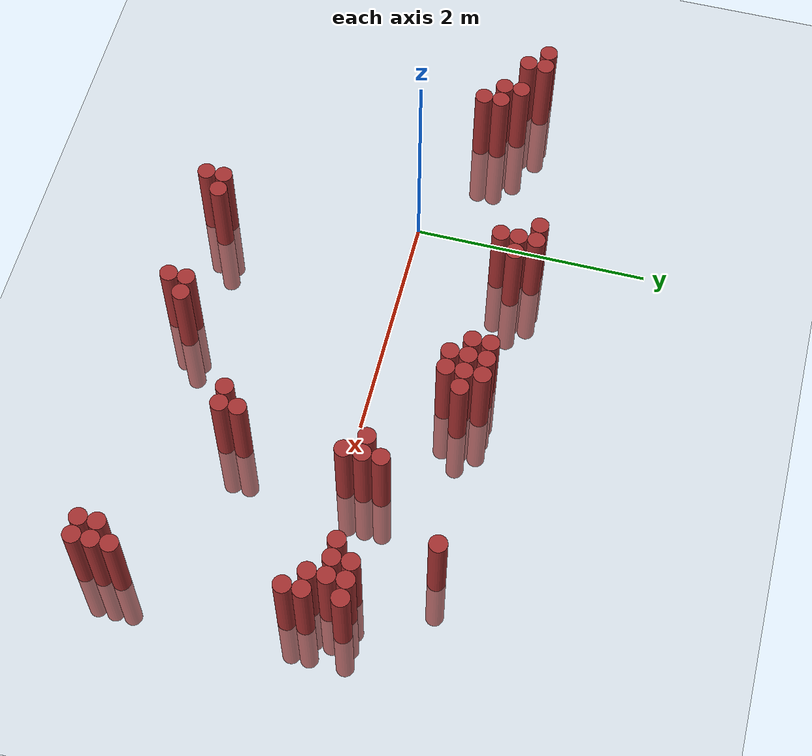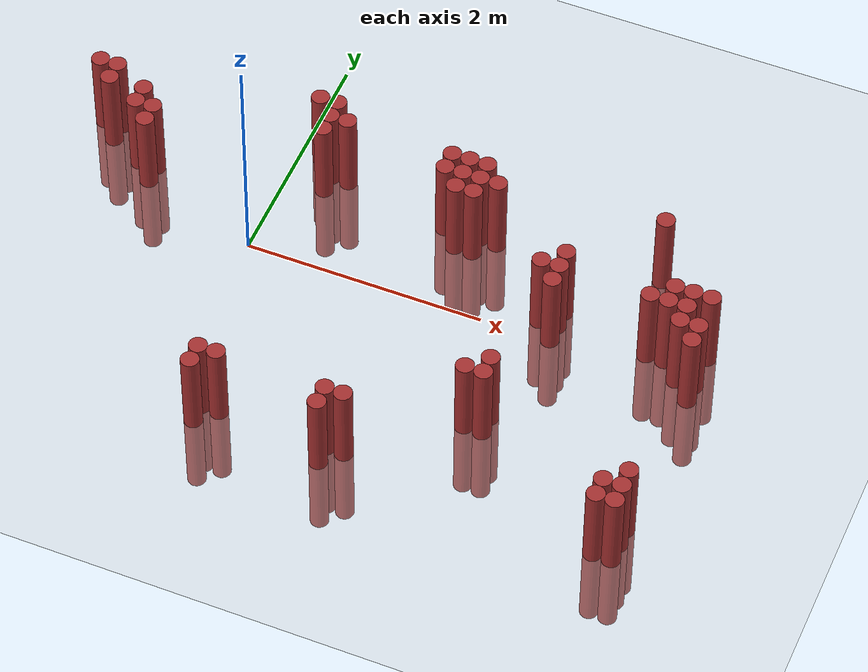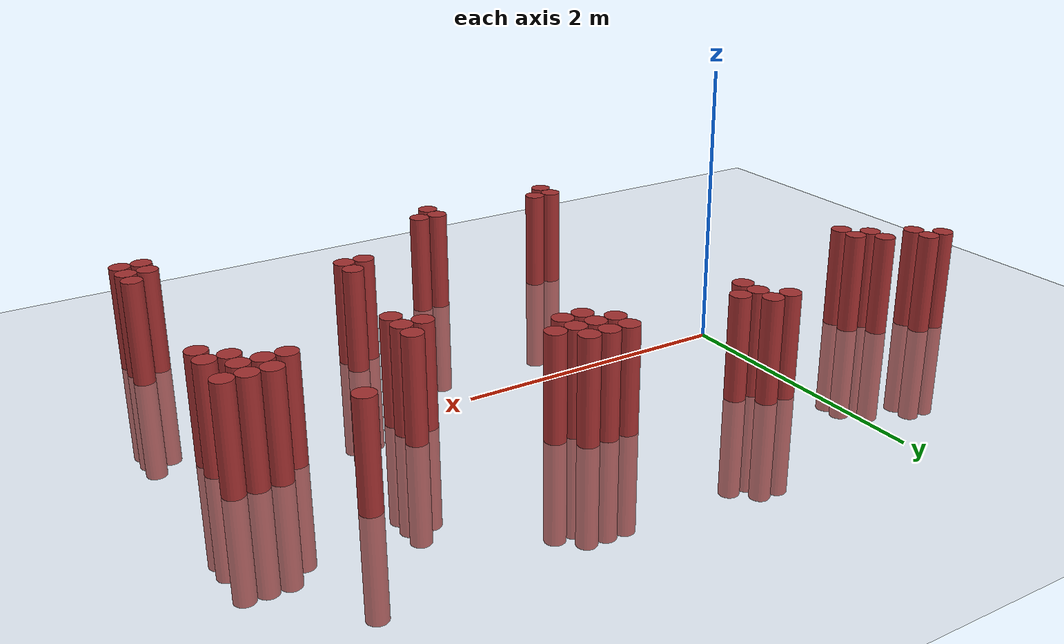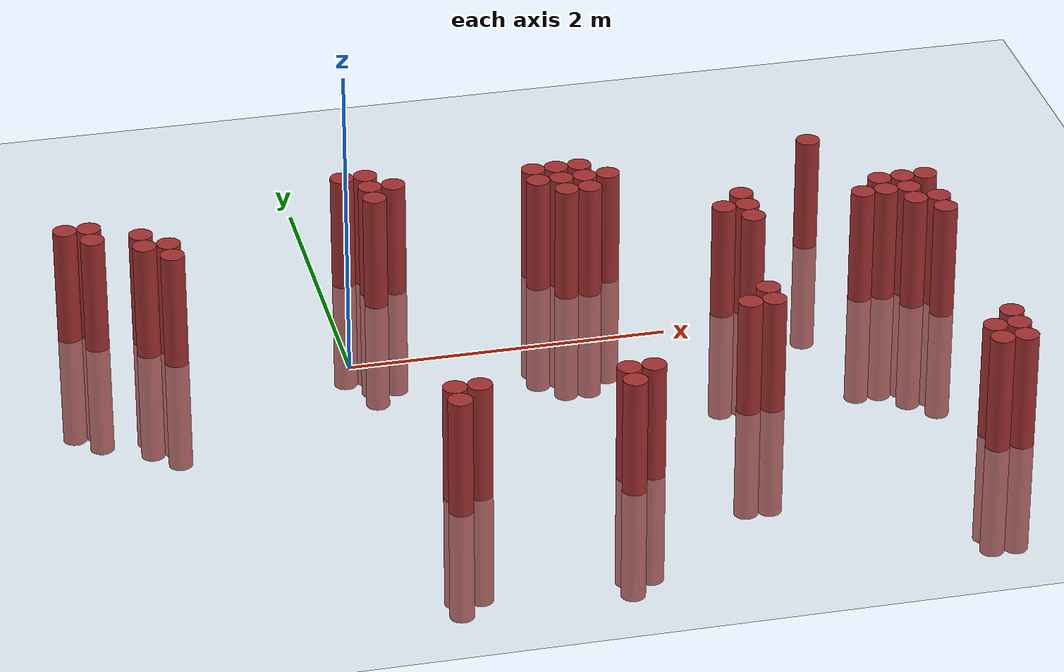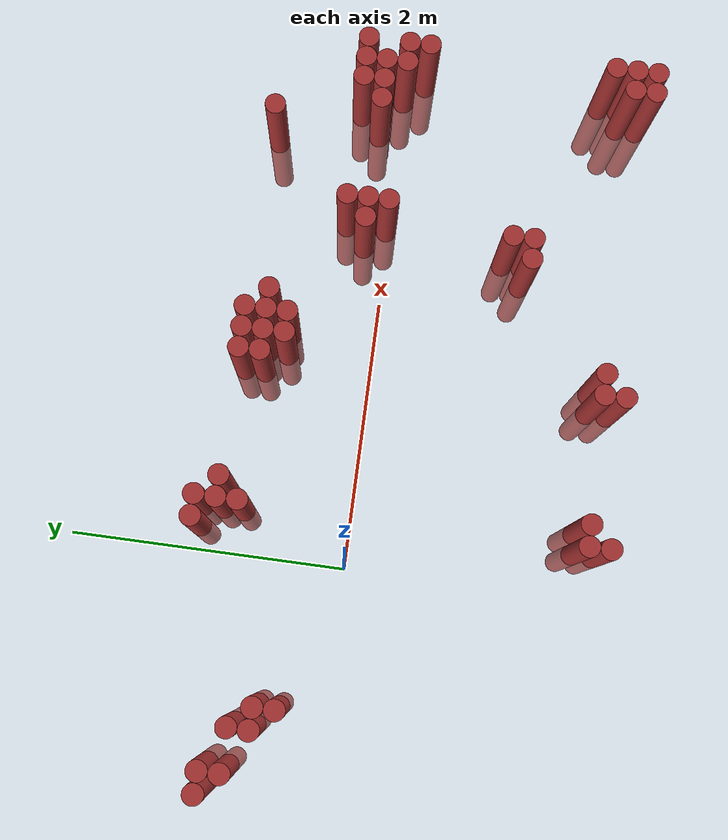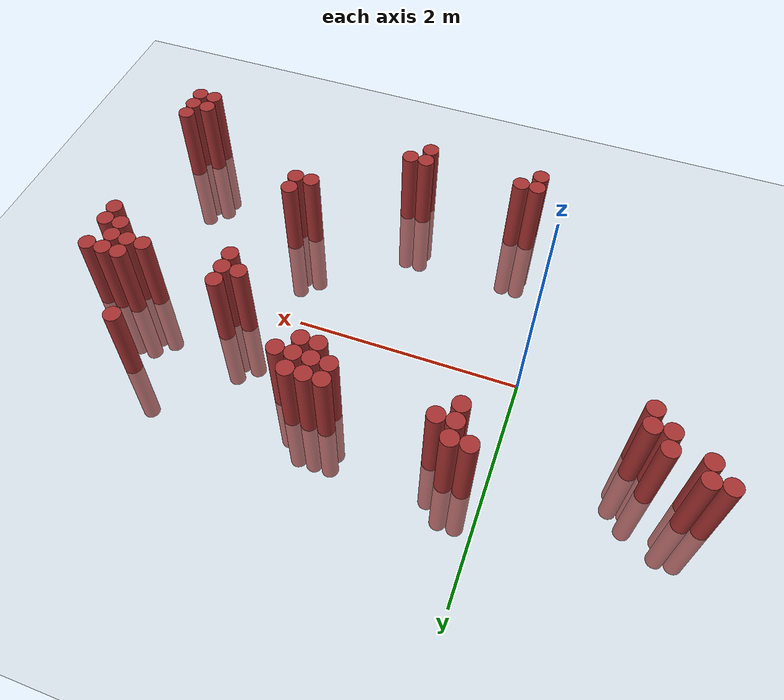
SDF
<sdf version="1.6">
 <world name="default">
  <model name="ground_plane">
   <static>1</static>
   <link name="link">
    <collision name="collision">
     <geometry><plane><normal>0 0 1</normal><size>100 100</size></plane></geometry>
     <surface><friction><ode><mu>100</mu><mu2>50</mu2></ode></friction></surface>
    </collision>
    <visual name="visual">
     <cast_shadows>0</cast_shadows>
     <geometry><plane><normal>0 0 1</normal><size>100 100</size></plane></geometry>
     <material>
      <script><uri>file://media/materials/scripts/gazebo.material</uri><name>Gazebo/Grey</name></script>
     </material>
    </visual>
   </link>
  </model>
  <model name="unit_cylinder_314">
   <static>1</static>
   <pose>-1.625000 0.775000 0.000000 0.000000 0.000000 0.000000</pose>
   <link name="link">
    <inertial>
     <mass>1</mass>
     <inertia><ixx>0.145833</ixx><ixy>0</ixy><ixz>0</ixz><iyy>0.145833</iyy><iyz>0</iyz><izz>0.125</izz></inertia>
    </inertial>
    <collision name="collision">
     <geometry><cylinder><radius>0.075000</radius><length>1.5</length></cylinder></geometry>
    </collision>
    <visual name="visual">
     <geometry><cylinder><radius>0.075000</radius><length>1.5</length></cylinder></geometry>
     <material>
      <ambient>0.648000 0.192000 0.192000 1</ambient>
      <diffuse>0.648000 0.192000 0.192000 1</diffuse>
     </material>
     <material>
      <script><name>Gazebo/Grey</name><uri>file://media/materials/scripts/gazebo.material</uri></script>
     </material>
    </visual>
   </link>
  </model>
  <model name="unit_cylinder_315">
   <static>1</static>
   <pose>-1.475000 0.625000 0.000000 0.000000 0.000000 0.000000</pose>
   <link name="link">
    <inertial>
     <mass>1</mass>
     <inertia><ixx>0.145833</ixx><ixy>0</ixy><ixz>0</ixz><iyy>0.145833</iyy><iyz>0</iyz><izz>0.125</izz></inertia>
    </inertial>
    <collision name="collision">
     <geometry><cylinder><radius>0.075000</radius><length>1.5</length></cylinder></geometry>
    </collision>
    <visual name="visual">
     <geometry><cylinder><radius>0.075000</radius><length>1.5</length></cylinder></geometry>
     <material>
      <ambient>0.648000 0.192000 0.192000 1</ambient>
      <diffuse>0.648000 0.192000 0.192000 1</diffuse>
     </material>
     <material>
      <script><name>Gazebo/Grey</name><uri>file://media/materials/scripts/gazebo.material</uri></script>
     </material>
    </visual>
   </link>
  </model>
  <model name="unit_cylinder_316">
   <static>1</static>
   <pose>-1.475000 0.775000 0.000000 0.000000 0.000000 0.000000</pose>
   <link name="link">
    <inertial>
     <mass>1</mass>
     <inertia><ixx>0.145833</ixx><ixy>0</ixy><ixz>0</ixz><iyy>0.145833</iyy><iyz>0</iyz><izz>0.125</izz></inertia>
    </inertial>
    <collision name="collision">
     <geometry><cylinder><radius>0.075000</radius><length>1.5</length></cylinder></geometry>
    </collision>
    <visual name="visual">
     <geometry><cylinder><radius>0.075000</radius><length>1.5</length></cylinder></geometry>
     <material>
      <ambient>0.648000 0.192000 0.192000 1</ambient>
      <diffuse>0.648000 0.192000 0.192000 1</diffuse>
     </material>
     <material>
      <script><name>Gazebo/Grey</name><uri>file://media/materials/scripts/gazebo.material</uri></script>
     </material>
    </visual>
   </link>
  </model>
  <model name="unit_cylinder_318">
   <static>1</static>
   <pose>-1.175000 0.475000 0.000000 0.000000 0.000000 0.000000</pose>
   <link name="link">
    <inertial>
     <mass>1</mass>
     <inertia><ixx>0.145833</ixx><ixy>0</ixy><ixz>0</ixz><iyy>0.145833</iyy><iyz>0</iyz><izz>0.125</izz></inertia>
    </inertial>
    <collision name="collision">
     <geometry><cylinder><radius>0.075000</radius><length>1.5</length></cylinder></geometry>
    </collision>
    <visual name="visual">
     <geometry><cylinder><radius>0.075000</radius><length>1.5</length></cylinder></geometry>
     <material>
      <ambient>0.648000 0.192000 0.192000 1</ambient>
      <diffuse>0.648000 0.192000 0.192000 1</diffuse>
     </material>
     <material>
      <script><name>Gazebo/Grey</name><uri>file://media/materials/scripts/gazebo.material</uri></script>
     </material>
    </visual>
   </link>
  </model>
  <model name="unit_cylinder_319">
   <static>1</static>
   <pose>-1.175000 0.625000 0.000000 0.000000 0.000000 0.000000</pose>
   <link name="link">
    <inertial>
     <mass>1</mass>
     <inertia><ixx>0.145833</ixx><ixy>0</ixy><ixz>0</ixz><iyy>0.145833</iyy><iyz>0</iyz><izz>0.125</izz></inertia>
    </inertial>
    <collision name="collision">
     <geometry><cylinder><radius>0.075000</radius><length>1.5</length></cylinder></geometry>
    </collision>
    <visual name="visual">
     <geometry><cylinder><radius>0.075000</radius><length>1.5</length></cylinder></geometry>
     <material>
      <ambient>0.648000 0.192000 0.192000 1</ambient>
      <diffuse>0.648000 0.192000 0.192000 1</diffuse>
     </material>
     <material>
      <script><name>Gazebo/Grey</name><uri>file://media/materials/scripts/gazebo.material</uri></script>
     </material>
    </visual>
   </link>
  </model>
  <model name="unit_cylinder_325">
   <static>1</static>
   <pose>-1.025000 0.325000 0.000000 0.000000 0.000000 0.000000</pose>
   <link name="link">
    <inertial>
     <mass>1</mass>
     <inertia><ixx>0.145833</ixx><ixy>0</ixy><ixz>0</ixz><iyy>0.145833</iyy><iyz>0</iyz><izz>0.125</izz></inertia>
    </inertial>
    <collision name="collision">
     <geometry><cylinder><radius>0.075000</radius><length>1.5</length></cylinder></geometry>
    </collision>
    <visual name="visual">
     <geometry><cylinder><radius>0.075000</radius><length>1.5</length></cylinder></geometry>
     <material>
      <ambient>0.648000 0.192000 0.192000 1</ambient>
      <diffuse>0.648000 0.192000 0.192000 1</diffuse>
     </material>
     <material>
      <script><name>Gazebo/Grey</name><uri>file://media/materials/scripts/gazebo.material</uri></script>
     </material>
    </visual>
   </link>
  </model>
  <model name="unit_cylinder_326">
   <static>1</static>
   <pose>-1.025000 0.475000 0.000000 0.000000 0.000000 0.000000</pose>
   <link name="link">
    <inertial>
     <mass>1</mass>
     <inertia><ixx>0.145833</ixx><ixy>0</ixy><ixz>0</ixz><iyy>0.145833</iyy><iyz>0</iyz><izz>0.125</izz></inertia>
    </inertial>
    <collision name="collision">
     <geometry><cylinder><radius>0.075000</radius><length>1.5</length></cylinder></geometry>
    </collision>
    <visual name="visual">
     <geometry><cylinder><radius>0.075000</radius><length>1.5</length></cylinder></geometry>
     <material>
      <ambient>0.648000 0.192000 0.192000 1</ambient>
      <diffuse>0.648000 0.192000 0.192000 1</diffuse>
     </material>
     <material>
      <script><name>Gazebo/Grey</name><uri>file://media/materials/scripts/gazebo.material</uri></script>
     </material>
    </visual>
   </link>
  </model>
  <model name="unit_cylinder_351">
   <static>1</static>
   <pose>0.175000 1.075000 0.000000 0.000000 0.000000 0.000000</pose>
   <link name="link">
    <inertial>
     <mass>1</mass>
     <inertia><ixx>0.145833</ixx><ixy>0</ixy><ixz>0</ixz><iyy>0.145833</iyy><iyz>0</iyz><izz>0.125</izz></inertia>
    </inertial>
    <collision name="collision">
     <geometry><cylinder><radius>0.075000</radius><length>1.5</length></cylinder></geometry>
    </collision>
    <visual name="visual">
     <geometry><cylinder><radius>0.075000</radius><length>1.5</length></cylinder></geometry>
     <material>
      <ambient>0.648000 0.192000 0.192000 1</ambient>
      <diffuse>0.648000 0.192000 0.192000 1</diffuse>
     </material>
     <material>
      <script><name>Gazebo/Grey</name><uri>file://media/materials/scripts/gazebo.material</uri></script>
     </material>
    </visual>
   </link>
  </model>
  <model name="unit_cylinder_353">
   <static>1</static>
   <pose>0.325000 -1.775000 0.000000 0.000000 0.000000 0.000000</pose>
   <link name="link">
    <inertial>
     <mass>1</mass>
     <inertia><ixx>0.145833</ixx><ixy>0</ixy><ixz>0</ixz><iyy>0.145833</iyy><iyz>0</iyz><izz>0.125</izz></inertia>
    </inertial>
    <collision name="collision">
     <geometry><cylinder><radius>0.075000</radius><length>1.5</length></cylinder></geometry>
    </collision>
    <visual name="visual">
     <geometry><cylinder><radius>0.075000</radius><length>1.5</length></cylinder></geometry>
     <material>
      <ambient>0.648000 0.192000 0.192000 1</ambient>
      <diffuse>0.648000 0.192000 0.192000 1</diffuse>
     </material>
     <material>
      <script><name>Gazebo/Grey</name><uri>file://media/materials/scripts/gazebo.material</uri></script>
     </material>
    </visual>
   </link>
  </model>
  <model name="unit_cylinder_354">
   <static>1</static>
   <pose>0.325000 -1.625000 0.000000 0.000000 0.000000 0.000000</pose>
   <link name="link">
    <inertial>
     <mass>1</mass>
     <inertia><ixx>0.145833</ixx><ixy>0</ixy><ixz>0</ixz><iyy>0.145833</iyy><iyz>0</iyz><izz>0.125</izz></inertia>
    </inertial>
    <collision name="collision">
     <geometry><cylinder><radius>0.075000</radius><length>1.5</length></cylinder></geometry>
    </collision>
    <visual name="visual">
     <geometry><cylinder><radius>0.075000</radius><length>1.5</length></cylinder></geometry>
     <material>
      <ambient>0.648000 0.192000 0.192000 1</ambient>
      <diffuse>0.648000 0.192000 0.192000 1</diffuse>
     </material>
     <material>
      <script><name>Gazebo/Grey</name><uri>file://media/materials/scripts/gazebo.material</uri></script>
     </material>
    </visual>
   </link>
  </model>
  <model name="unit_cylinder_355">
   <static>1</static>
   <pose>0.325000 0.775000 0.000000 0.000000 0.000000 0.000000</pose>
   <link name="link">
    <inertial>
     <mass>1</mass>
     <inertia><ixx>0.145833</ixx><ixy>0</ixy><ixz>0</ixz><iyy>0.145833</iyy><iyz>0</iyz><izz>0.125</izz></inertia>
    </inertial>
    <collision name="collision">
     <geometry><cylinder><radius>0.075000</radius><length>1.5</length></cylinder></geometry>
    </collision>
    <visual name="visual">
     <geometry><cylinder><radius>0.075000</radius><length>1.5</length></cylinder></geometry>
     <material>
      <ambient>0.648000 0.192000 0.192000 1</ambient>
      <diffuse>0.648000 0.192000 0.192000 1</diffuse>
     </material>
     <material>
      <script><name>Gazebo/Grey</name><uri>file://media/materials/scripts/gazebo.material</uri></script>
     </material>
    </visual>
   </link>
  </model>
  <model name="unit_cylinder_356">
   <static>1</static>
   <pose>0.325000 0.925000 0.000000 0.000000 0.000000 0.000000</pose>
   <link name="link">
    <inertial>
     <mass>1</mass>
     <inertia><ixx>0.145833</ixx><ixy>0</ixy><ixz>0</ixz><iyy>0.145833</iyy><iyz>0</iyz><izz>0.125</izz></inertia>
    </inertial>
    <collision name="collision">
     <geometry><cylinder><radius>0.075000</radius><length>1.5</length></cylinder></geometry>
    </collision>
    <visual name="visual">
     <geometry><cylinder><radius>0.075000</radius><length>1.5</length></cylinder></geometry>
     <material>
      <ambient>0.648000 0.192000 0.192000 1</ambient>
      <diffuse>0.648000 0.192000 0.192000 1</diffuse>
     </material>
     <material>
      <script><name>Gazebo/Grey</name><uri>file://media/materials/scripts/gazebo.material</uri></script>
     </material>
    </visual>
   </link>
  </model>
  <model name="unit_cylinder_357">
   <static>1</static>
   <pose>0.325000 1.075000 0.000000 0.000000 0.000000 0.000000</pose>
   <link name="link">
    <inertial>
     <mass>1</mass>
     <inertia><ixx>0.145833</ixx><ixy>0</ixy><ixz>0</ixz><iyy>0.145833</iyy><iyz>0</iyz><izz>0.125</izz></inertia>
    </inertial>
    <collision name="collision">
     <geometry><cylinder><radius>0.075000</radius><length>1.5</length></cylinder></geometry>
    </collision>
    <visual name="visual">
     <geometry><cylinder><radius>0.075000</radius><length>1.5</length></cylinder></geometry>
     <material>
      <ambient>0.648000 0.192000 0.192000 1</ambient>
      <diffuse>0.648000 0.192000 0.192000 1</diffuse>
     </material>
     <material>
      <script><name>Gazebo/Grey</name><uri>file://media/materials/scripts/gazebo.material</uri></script>
     </material>
    </visual>
   </link>
  </model>
  <model name="unit_cylinder_359">
   <static>1</static>
   <pose>0.475000 -1.625000 0.000000 0.000000 0.000000 0.000000</pose>
   <link name="link">
    <inertial>
     <mass>1</mass>
     <inertia><ixx>0.145833</ixx><ixy>0</ixy><ixz>0</ixz><iyy>0.145833</iyy><iyz>0</iyz><izz>0.125</izz></inertia>
    </inertial>
    <collision name="collision">
     <geometry><cylinder><radius>0.075000</radius><length>1.5</length></cylinder></geometry>
    </collision>
    <visual name="visual">
     <geometry><cylinder><radius>0.075000</radius><length>1.5</length></cylinder></geometry>
     <material>
      <ambient>0.648000 0.192000 0.192000 1</ambient>
      <diffuse>0.648000 0.192000 0.192000 1</diffuse>
     </material>
     <material>
      <script><name>Gazebo/Grey</name><uri>file://media/materials/scripts/gazebo.material</uri></script>
     </material>
    </visual>
   </link>
  </model>
  <model name="unit_cylinder_360">
   <static>1</static>
   <pose>0.475000 0.925000 0.000000 0.000000 0.000000 0.000000</pose>
   <link name="link">
    <inertial>
     <mass>1</mass>
     <inertia><ixx>0.145833</ixx><ixy>0</ixy><ixz>0</ixz><iyy>0.145833</iyy><iyz>0</iyz><izz>0.125</izz></inertia>
    </inertial>
    <collision name="collision">
     <geometry><cylinder><radius>0.075000</radius><length>1.5</length></cylinder></geometry>
    </collision>
    <visual name="visual">
     <geometry><cylinder><radius>0.075000</radius><length>1.5</length></cylinder></geometry>
     <material>
      <ambient>0.648000 0.192000 0.192000 1</ambient>
      <diffuse>0.648000 0.192000 0.192000 1</diffuse>
     </material>
     <material>
      <script><name>Gazebo/Grey</name><uri>file://media/materials/scripts/gazebo.material</uri></script>
     </material>
    </visual>
   </link>
  </model>
  <model name="unit_cylinder_366">
   <static>1</static>
   <pose>1.375000 -1.775000 0.000000 0.000000 0.000000 0.000000</pose>
   <link name="link">
    <inertial>
     <mass>1</mass>
     <inertia><ixx>0.145833</ixx><ixy>0</ixy><ixz>0</ixz><iyy>0.145833</iyy><iyz>0</iyz><izz>0.125</izz></inertia>
    </inertial>
    <collision name="collision">
     <geometry><cylinder><radius>0.075000</radius><length>1.5</length></cylinder></geometry>
    </collision>
    <visual name="visual">
     <geometry><cylinder><radius>0.075000</radius><length>1.5</length></cylinder></geometry>
     <material>
      <ambient>0.648000 0.192000 0.192000 1</ambient>
      <diffuse>0.648000 0.192000 0.192000 1</diffuse>
     </material>
     <material>
      <script><name>Gazebo/Grey</name><uri>file://media/materials/scripts/gazebo.material</uri></script>
     </material>
    </visual>
   </link>
  </model>
  <model name="unit_cylinder_367">
   <static>1</static>
   <pose>1.375000 -1.625000 0.000000 0.000000 0.000000 0.000000</pose>
   <link name="link">
    <inertial>
     <mass>1</mass>
     <inertia><ixx>0.145833</ixx><ixy>0</ixy><ixz>0</ixz><iyy>0.145833</iyy><iyz>0</iyz><izz>0.125</izz></inertia>
    </inertial>
    <collision name="collision">
     <geometry><cylinder><radius>0.075000</radius><length>1.5</length></cylinder></geometry>
    </collision>
    <visual name="visual">
     <geometry><cylinder><radius>0.075000</radius><length>1.5</length></cylinder></geometry>
     <material>
      <ambient>0.648000 0.192000 0.192000 1</ambient>
      <diffuse>0.648000 0.192000 0.192000 1</diffuse>
     </material>
     <material>
      <script><name>Gazebo/Grey</name><uri>file://media/materials/scripts/gazebo.material</uri></script>
     </material>
    </visual>
   </link>
  </model>
  <model name="unit_cylinder_368">
   <static>1</static>
   <pose>1.375000 0.775000 0.000000 0.000000 0.000000 0.000000</pose>
   <link name="link">
    <inertial>
     <mass>1</mass>
     <inertia><ixx>0.145833</ixx><ixy>0</ixy><ixz>0</ixz><iyy>0.145833</iyy><iyz>0</iyz><izz>0.125</izz></inertia>
    </inertial>
    <collision name="collision">
     <geometry><cylinder><radius>0.075000</radius><length>1.5</length></cylinder></geometry>
    </collision>
    <visual name="visual">
     <geometry><cylinder><radius>0.075000</radius><length>1.5</length></cylinder></geometry>
     <material>
      <ambient>0.648000 0.192000 0.192000 1</ambient>
      <diffuse>0.648000 0.192000 0.192000 1</diffuse>
     </material>
     <material>
      <script><name>Gazebo/Grey</name><uri>file://media/materials/scripts/gazebo.material</uri></script>
     </material>
    </visual>
   </link>
  </model>
  <model name="unit_cylinder_369">
   <static>1</static>
   <pose>1.375000 0.925000 0.000000 0.000000 0.000000 0.000000</pose>
   <link name="link">
    <inertial>
     <mass>1</mass>
     <inertia><ixx>0.145833</ixx><ixy>0</ixy><ixz>0</ixz><iyy>0.145833</iyy><iyz>0</iyz><izz>0.125</izz></inertia>
    </inertial>
    <collision name="collision">
     <geometry><cylinder><radius>0.075000</radius><length>1.5</length></cylinder></geometry>
    </collision>
    <visual name="visual">
     <geometry><cylinder><radius>0.075000</radius><length>1.5</length></cylinder></geometry>
     <material>
      <ambient>0.648000 0.192000 0.192000 1</ambient>
      <diffuse>0.648000 0.192000 0.192000 1</diffuse>
     </material>
     <material>
      <script><name>Gazebo/Grey</name><uri>file://media/materials/scripts/gazebo.material</uri></script>
     </material>
    </visual>
   </link>
  </model>
  <model name="unit_cylinder_370">
   <static>1</static>
   <pose>1.525000 -1.625000 0.000000 0.000000 0.000000 0.000000</pose>
   <link name="link">
    <inertial>
     <mass>1</mass>
     <inertia><ixx>0.145833</ixx><ixy>0</ixy><ixz>0</ixz><iyy>0.145833</iyy><iyz>0</iyz><izz>0.125</izz></inertia>
    </inertial>
    <collision name="collision">
     <geometry><cylinder><radius>0.075000</radius><length>1.5</length></cylinder></geometry>
    </collision>
    <visual name="visual">
     <geometry><cylinder><radius>0.075000</radius><length>1.5</length></cylinder></geometry>
     <material>
      <ambient>0.648000 0.192000 0.192000 1</ambient>
      <diffuse>0.648000 0.192000 0.192000 1</diffuse>
     </material>
     <material>
      <script><name>Gazebo/Grey</name><uri>file://media/materials/scripts/gazebo.material</uri></script>
     </material>
    </visual>
   </link>
  </model>
  <model name="unit_cylinder_371">
   <static>1</static>
   <pose>1.525000 0.625000 0.000000 0.000000 0.000000 0.000000</pose>
   <link name="link">
    <inertial>
     <mass>1</mass>
     <inertia><ixx>0.145833</ixx><ixy>0</ixy><ixz>0</ixz><iyy>0.145833</iyy><iyz>0</iyz><izz>0.125</izz></inertia>
    </inertial>
    <collision name="collision">
     <geometry><cylinder><radius>0.075000</radius><length>1.5</length></cylinder></geometry>
    </collision>
    <visual name="visual">
     <geometry><cylinder><radius>0.075000</radius><length>1.5</length></cylinder></geometry>
     <material>
      <ambient>0.648000 0.192000 0.192000 1</ambient>
      <diffuse>0.648000 0.192000 0.192000 1</diffuse>
     </material>
     <material>
      <script><name>Gazebo/Grey</name><uri>file://media/materials/scripts/gazebo.material</uri></script>
     </material>
    </visual>
   </link>
  </model>
  <model name="unit_cylinder_372">
   <static>1</static>
   <pose>1.525000 0.775000 0.000000 0.000000 0.000000 0.000000</pose>
   <link name="link">
    <inertial>
     <mass>1</mass>
     <inertia><ixx>0.145833</ixx><ixy>0</ixy><ixz>0</ixz><iyy>0.145833</iyy><iyz>0</iyz><izz>0.125</izz></inertia>
    </inertial>
    <collision name="collision">
     <geometry><cylinder><radius>0.075000</radius><length>1.5</length></cylinder></geometry>
    </collision>
    <visual name="visual">
     <geometry><cylinder><radius>0.075000</radius><length>1.5</length></cylinder></geometry>
     <material>
      <ambient>0.648000 0.192000 0.192000 1</ambient>
      <diffuse>0.648000 0.192000 0.192000 1</diffuse>
     </material>
     <material>
      <script><name>Gazebo/Grey</name><uri>file://media/materials/scripts/gazebo.material</uri></script>
     </material>
    </visual>
   </link>
  </model>
  <model name="unit_cylinder_373">
   <static>1</static>
   <pose>1.525000 0.925000 0.000000 0.000000 0.000000 0.000000</pose>
   <link name="link">
    <inertial>
     <mass>1</mass>
     <inertia><ixx>0.145833</ixx><ixy>0</ixy><ixz>0</ixz><iyy>0.145833</iyy><iyz>0</iyz><izz>0.125</izz></inertia>
    </inertial>
    <collision name="collision">
     <geometry><cylinder><radius>0.075000</radius><length>1.5</length></cylinder></geometry>
    </collision>
    <visual name="visual">
     <geometry><cylinder><radius>0.075000</radius><length>1.5</length></cylinder></geometry>
     <material>
      <ambient>0.648000 0.192000 0.192000 1</ambient>
      <diffuse>0.648000 0.192000 0.192000 1</diffuse>
     </material>
     <material>
      <script><name>Gazebo/Grey</name><uri>file://media/materials/scripts/gazebo.material</uri></script>
     </material>
    </visual>
   </link>
  </model>
  <model name="unit_cylinder_375">
   <static>1</static>
   <pose>1.675000 0.625000 0.000000 0.000000 0.000000 0.000000</pose>
   <link name="link">
    <inertial>
     <mass>1</mass>
     <inertia><ixx>0.145833</ixx><ixy>0</ixy><ixz>0</ixz><iyy>0.145833</iyy><iyz>0</iyz><izz>0.125</izz></inertia>
    </inertial>
    <collision name="collision">
     <geometry><cylinder><radius>0.075000</radius><length>1.5</length></cylinder></geometry>
    </collision>
    <visual name="visual">
     <geometry><cylinder><radius>0.075000</radius><length>1.5</length></cylinder></geometry>
     <material>
      <ambient>0.648000 0.192000 0.192000 1</ambient>
      <diffuse>0.648000 0.192000 0.192000 1</diffuse>
     </material>
     <material>
      <script><name>Gazebo/Grey</name><uri>file://media/materials/scripts/gazebo.material</uri></script>
     </material>
    </visual>
   </link>
  </model>
  <model name="unit_cylinder_376">
   <static>1</static>
   <pose>1.675000 0.775000 0.000000 0.000000 0.000000 0.000000</pose>
   <link name="link">
    <inertial>
     <mass>1</mass>
     <inertia><ixx>0.145833</ixx><ixy>0</ixy><ixz>0</ixz><iyy>0.145833</iyy><iyz>0</iyz><izz>0.125</izz></inertia>
    </inertial>
    <collision name="collision">
     <geometry><cylinder><radius>0.075000</radius><length>1.5</length></cylinder></geometry>
    </collision>
    <visual name="visual">
     <geometry><cylinder><radius>0.075000</radius><length>1.5</length></cylinder></geometry>
     <material>
      <ambient>0.648000 0.192000 0.192000 1</ambient>
      <diffuse>0.648000 0.192000 0.192000 1</diffuse>
     </material>
     <material>
      <script><name>Gazebo/Grey</name><uri>file://media/materials/scripts/gazebo.material</uri></script>
     </material>
    </visual>
   </link>
  </model>
  <model name="unit_cylinder_377">
   <static>1</static>
   <pose>1.675000 0.925000 0.000000 0.000000 0.000000 0.000000</pose>
   <link name="link">
    <inertial>
     <mass>1</mass>
     <inertia><ixx>0.145833</ixx><ixy>0</ixy><ixz>0</ixz><iyy>0.145833</iyy><iyz>0</iyz><izz>0.125</izz></inertia>
    </inertial>
    <collision name="collision">
     <geometry><cylinder><radius>0.075000</radius><length>1.5</length></cylinder></geometry>
    </collision>
    <visual name="visual">
     <geometry><cylinder><radius>0.075000</radius><length>1.5</length></cylinder></geometry>
     <material>
      <ambient>0.648000 0.192000 0.192000 1</ambient>
      <diffuse>0.648000 0.192000 0.192000 1</diffuse>
     </material>
     <material>
      <script><name>Gazebo/Grey</name><uri>file://media/materials/scripts/gazebo.material</uri></script>
     </material>
    </visual>
   </link>
  </model>
  <model name="unit_cylinder_380">
   <static>1</static>
   <pose>1.825000 0.775000 0.000000 0.000000 0.000000 0.000000</pose>
   <link name="link">
    <inertial>
     <mass>1</mass>
     <inertia><ixx>0.145833</ixx><ixy>0</ixy><ixz>0</ixz><iyy>0.145833</iyy><iyz>0</iyz><izz>0.125</izz></inertia>
    </inertial>
    <collision name="collision">
     <geometry><cylinder><radius>0.075000</radius><length>1.5</length></cylinder></geometry>
    </collision>
    <visual name="visual">
     <geometry><cylinder><radius>0.075000</radius><length>1.5</length></cylinder></geometry>
     <material>
      <ambient>0.648000 0.192000 0.192000 1</ambient>
      <diffuse>0.648000 0.192000 0.192000 1</diffuse>
     </material>
     <material>
      <script><name>Gazebo/Grey</name><uri>file://media/materials/scripts/gazebo.material</uri></script>
     </material>
    </visual>
   </link>
  </model>
  <model name="unit_cylinder_383">
   <static>1</static>
   <pose>2.275000 -1.025000 0.000000 0.000000 0.000000 0.000000</pose>
   <link name="link">
    <inertial>
     <mass>1</mass>
     <inertia><ixx>0.145833</ixx><ixy>0</ixy><ixz>0</ixz><iyy>0.145833</iyy><iyz>0</iyz><izz>0.125</izz></inertia>
    </inertial>
    <collision name="collision">
     <geometry><cylinder><radius>0.075000</radius><length>1.5</length></cylinder></geometry>
    </collision>
    <visual name="visual">
     <geometry><cylinder><radius>0.075000</radius><length>1.5</length></cylinder></geometry>
     <material>
      <ambient>0.648000 0.192000 0.192000 1</ambient>
      <diffuse>0.648000 0.192000 0.192000 1</diffuse>
     </material>
     <material>
      <script><name>Gazebo/Grey</name><uri>file://media/materials/scripts/gazebo.material</uri></script>
     </material>
    </visual>
   </link>
  </model>
  <model name="unit_cylinder_386">
   <static>1</static>
   <pose>2.425000 -1.025000 0.000000 0.000000 0.000000 0.000000</pose>
   <link name="link">
    <inertial>
     <mass>1</mass>
     <inertia><ixx>0.145833</ixx><ixy>0</ixy><ixz>0</ixz><iyy>0.145833</iyy><iyz>0</iyz><izz>0.125</izz></inertia>
    </inertial>
    <collision name="collision">
     <geometry><cylinder><radius>0.075000</radius><length>1.5</length></cylinder></geometry>
    </collision>
    <visual name="visual">
     <geometry><cylinder><radius>0.075000</radius><length>1.5</length></cylinder></geometry>
     <material>
      <ambient>0.648000 0.192000 0.192000 1</ambient>
      <diffuse>0.648000 0.192000 0.192000 1</diffuse>
     </material>
     <material>
      <script><name>Gazebo/Grey</name><uri>file://media/materials/scripts/gazebo.material</uri></script>
     </material>
    </visual>
   </link>
  </model>
  <model name="unit_cylinder_387">
   <static>1</static>
   <pose>2.425000 -0.875000 0.000000 0.000000 0.000000 0.000000</pose>
   <link name="link">
    <inertial>
     <mass>1</mass>
     <inertia><ixx>0.145833</ixx><ixy>0</ixy><ixz>0</ixz><iyy>0.145833</iyy><iyz>0</iyz><izz>0.125</izz></inertia>
    </inertial>
    <collision name="collision">
     <geometry><cylinder><radius>0.075000</radius><length>1.5</length></cylinder></geometry>
    </collision>
    <visual name="visual">
     <geometry><cylinder><radius>0.075000</radius><length>1.5</length></cylinder></geometry>
     <material>
      <ambient>0.648000 0.192000 0.192000 1</ambient>
      <diffuse>0.648000 0.192000 0.192000 1</diffuse>
     </material>
     <material>
      <script><name>Gazebo/Grey</name><uri>file://media/materials/scripts/gazebo.material</uri></script>
     </material>
    </visual>
   </link>
  </model>
  <model name="unit_cylinder_388">
   <static>1</static>
   <pose>2.425000 0.175000 0.000000 0.000000 0.000000 0.000000</pose>
   <link name="link">
    <inertial>
     <mass>1</mass>
     <inertia><ixx>0.145833</ixx><ixy>0</ixy><ixz>0</ixz><iyy>0.145833</iyy><iyz>0</iyz><izz>0.125</izz></inertia>
    </inertial>
    <collision name="collision">
     <geometry><cylinder><radius>0.075000</radius><length>1.5</length></cylinder></geometry>
    </collision>
    <visual name="visual">
     <geometry><cylinder><radius>0.075000</radius><length>1.5</length></cylinder></geometry>
     <material>
      <ambient>0.648000 0.192000 0.192000 1</ambient>
      <diffuse>0.648000 0.192000 0.192000 1</diffuse>
     </material>
     <material>
      <script><name>Gazebo/Grey</name><uri>file://media/materials/scripts/gazebo.material</uri></script>
     </material>
    </visual>
   </link>
  </model>
  <model name="unit_cylinder_390">
   <static>1</static>
   <pose>2.575000 0.025000 0.000000 0.000000 0.000000 0.000000</pose>
   <link name="link">
    <inertial>
     <mass>1</mass>
     <inertia><ixx>0.145833</ixx><ixy>0</ixy><ixz>0</ixz><iyy>0.145833</iyy><iyz>0</iyz><izz>0.125</izz></inertia>
    </inertial>
    <collision name="collision">
     <geometry><cylinder><radius>0.075000</radius><length>1.5</length></cylinder></geometry>
    </collision>
    <visual name="visual">
     <geometry><cylinder><radius>0.075000</radius><length>1.5</length></cylinder></geometry>
     <material>
      <ambient>0.648000 0.192000 0.192000 1</ambient>
      <diffuse>0.648000 0.192000 0.192000 1</diffuse>
     </material>
     <material>
      <script><name>Gazebo/Grey</name><uri>file://media/materials/scripts/gazebo.material</uri></script>
     </material>
    </visual>
   </link>
  </model>
  <model name="unit_cylinder_391">
   <static>1</static>
   <pose>2.575000 0.175000 0.000000 0.000000 0.000000 0.000000</pose>
   <link name="link">
    <inertial>
     <mass>1</mass>
     <inertia><ixx>0.145833</ixx><ixy>0</ixy><ixz>0</ixz><iyy>0.145833</iyy><iyz>0</iyz><izz>0.125</izz></inertia>
    </inertial>
    <collision name="collision">
     <geometry><cylinder><radius>0.075000</radius><length>1.5</length></cylinder></geometry>
    </collision>
    <visual name="visual">
     <geometry><cylinder><radius>0.075000</radius><length>1.5</length></cylinder></geometry>
     <material>
      <ambient>0.648000 0.192000 0.192000 1</ambient>
      <diffuse>0.648000 0.192000 0.192000 1</diffuse>
     </material>
     <material>
      <script><name>Gazebo/Grey</name><uri>file://media/materials/scripts/gazebo.material</uri></script>
     </material>
    </visual>
   </link>
  </model>
  <model name="unit_cylinder_392">
   <static>1</static>
   <pose>2.575000 0.325000 0.000000 0.000000 0.000000 0.000000</pose>
   <link name="link">
    <inertial>
     <mass>1</mass>
     <inertia><ixx>0.145833</ixx><ixy>0</ixy><ixz>0</ixz><iyy>0.145833</iyy><iyz>0</iyz><izz>0.125</izz></inertia>
    </inertial>
    <collision name="collision">
     <geometry><cylinder><radius>0.075000</radius><length>1.5</length></cylinder></geometry>
    </collision>
    <visual name="visual">
     <geometry><cylinder><radius>0.075000</radius><length>1.5</length></cylinder></geometry>
     <material>
      <ambient>0.648000 0.192000 0.192000 1</ambient>
      <diffuse>0.648000 0.192000 0.192000 1</diffuse>
     </material>
     <material>
      <script><name>Gazebo/Grey</name><uri>file://media/materials/scripts/gazebo.material</uri></script>
     </material>
    </visual>
   </link>
  </model>
  <model name="unit_cylinder_402">
   <static>1</static>
   <pose>3.175000 0.925000 0.000000 0.000000 0.000000 0.000000</pose>
   <link name="link">
    <inertial>
     <mass>1</mass>
     <inertia><ixx>0.145833</ixx><ixy>0</ixy><ixz>0</ixz><iyy>0.145833</iyy><iyz>0</iyz><izz>0.125</izz></inertia>
    </inertial>
    <collision name="collision">
     <geometry><cylinder><radius>0.075000</radius><length>1.5</length></cylinder></geometry>
    </collision>
    <visual name="visual">
     <geometry><cylinder><radius>0.075000</radius><length>1.5</length></cylinder></geometry>
     <material>
      <ambient>0.648000 0.192000 0.192000 1</ambient>
      <diffuse>0.648000 0.192000 0.192000 1</diffuse>
     </material>
     <material>
      <script><name>Gazebo/Grey</name><uri>file://media/materials/scripts/gazebo.material</uri></script>
     </material>
    </visual>
   </link>
  </model>
  <model name="unit_cylinder_407">
   <static>1</static>
   <pose>3.325000 0.175000 0.000000 0.000000 0.000000 0.000000</pose>
   <link name="link">
    <inertial>
     <mass>1</mass>
     <inertia><ixx>0.145833</ixx><ixy>0</ixy><ixz>0</ixz><iyy>0.145833</iyy><iyz>0</iyz><izz>0.125</izz></inertia>
    </inertial>
    <collision name="collision">
     <geometry><cylinder><radius>0.075000</radius><length>1.5</length></cylinder></geometry>
    </collision>
    <visual name="visual">
     <geometry><cylinder><radius>0.075000</radius><length>1.5</length></cylinder></geometry>
     <material>
      <ambient>0.648000 0.192000 0.192000 1</ambient>
      <diffuse>0.648000 0.192000 0.192000 1</diffuse>
     </material>
     <material>
      <script><name>Gazebo/Grey</name><uri>file://media/materials/scripts/gazebo.material</uri></script>
     </material>
    </visual>
   </link>
  </model>
  <model name="unit_cylinder_411">
   <static>1</static>
   <pose>3.475000 0.175000 0.000000 0.000000 0.000000 0.000000</pose>
   <link name="link">
    <inertial>
     <mass>1</mass>
     <inertia><ixx>0.145833</ixx><ixy>0</ixy><ixz>0</ixz><iyy>0.145833</iyy><iyz>0</iyz><izz>0.125</izz></inertia>
    </inertial>
    <collision name="collision">
     <geometry><cylinder><radius>0.075000</radius><length>1.5</length></cylinder></geometry>
    </collision>
    <visual name="visual">
     <geometry><cylinder><radius>0.075000</radius><length>1.5</length></cylinder></geometry>
     <material>
      <ambient>0.648000 0.192000 0.192000 1</ambient>
      <diffuse>0.648000 0.192000 0.192000 1</diffuse>
     </material>
     <material>
      <script><name>Gazebo/Grey</name><uri>file://media/materials/scripts/gazebo.material</uri></script>
     </material>
    </visual>
   </link>
  </model>
  <model name="unit_cylinder_412">
   <static>1</static>
   <pose>3.475000 0.325000 0.000000 0.000000 0.000000 0.000000</pose>
   <link name="link">
    <inertial>
     <mass>1</mass>
     <inertia><ixx>0.145833</ixx><ixy>0</ixy><ixz>0</ixz><iyy>0.145833</iyy><iyz>0</iyz><izz>0.125</izz></inertia>
    </inertial>
    <collision name="collision">
     <geometry><cylinder><radius>0.075000</radius><length>1.5</length></cylinder></geometry>
    </collision>
    <visual name="visual">
     <geometry><cylinder><radius>0.075000</radius><length>1.5</length></cylinder></geometry>
     <material>
      <ambient>0.648000 0.192000 0.192000 1</ambient>
      <diffuse>0.648000 0.192000 0.192000 1</diffuse>
     </material>
     <material>
      <script><name>Gazebo/Grey</name><uri>file://media/materials/scripts/gazebo.material</uri></script>
     </material>
    </visual>
   </link>
  </model>
  <model name="unit_cylinder_415">
   <static>1</static>
   <pose>3.625000 -1.775000 0.000000 0.000000 0.000000 0.000000</pose>
   <link name="link">
    <inertial>
     <mass>1</mass>
     <inertia><ixx>0.145833</ixx><ixy>0</ixy><ixz>0</ixz><iyy>0.145833</iyy><iyz>0</iyz><izz>0.125</izz></inertia>
    </inertial>
    <collision name="collision">
     <geometry><cylinder><radius>0.075000</radius><length>1.5</length></cylinder></geometry>
    </collision>
    <visual name="visual">
     <geometry><cylinder><radius>0.075000</radius><length>1.5</length></cylinder></geometry>
     <material>
      <ambient>0.648000 0.192000 0.192000 1</ambient>
      <diffuse>0.648000 0.192000 0.192000 1</diffuse>
     </material>
     <material>
      <script><name>Gazebo/Grey</name><uri>file://media/materials/scripts/gazebo.material</uri></script>
     </material>
    </visual>
   </link>
  </model>
  <model name="unit_cylinder_416">
   <static>1</static>
   <pose>3.625000 -1.625000 0.000000 0.000000 0.000000 0.000000</pose>
   <link name="link">
    <inertial>
     <mass>1</mass>
     <inertia><ixx>0.145833</ixx><ixy>0</ixy><ixz>0</ixz><iyy>0.145833</iyy><iyz>0</iyz><izz>0.125</izz></inertia>
    </inertial>
    <collision name="collision">
     <geometry><cylinder><radius>0.075000</radius><length>1.5</length></cylinder></geometry>
    </collision>
    <visual name="visual">
     <geometry><cylinder><radius>0.075000</radius><length>1.5</length></cylinder></geometry>
     <material>
      <ambient>0.648000 0.192000 0.192000 1</ambient>
      <diffuse>0.648000 0.192000 0.192000 1</diffuse>
     </material>
     <material>
      <script><name>Gazebo/Grey</name><uri>file://media/materials/scripts/gazebo.material</uri></script>
     </material>
    </visual>
   </link>
  </model>
  <model name="unit_cylinder_417">
   <static>1</static>
   <pose>3.625000 0.025000 0.000000 0.000000 0.000000 0.000000</pose>
   <link name="link">
    <inertial>
     <mass>1</mass>
     <inertia><ixx>0.145833</ixx><ixy>0</ixy><ixz>0</ixz><iyy>0.145833</iyy><iyz>0</iyz><izz>0.125</izz></inertia>
    </inertial>
    <collision name="collision">
     <geometry><cylinder><radius>0.075000</radius><length>1.5</length></cylinder></geometry>
    </collision>
    <visual name="visual">
     <geometry><cylinder><radius>0.075000</radius><length>1.5</length></cylinder></geometry>
     <material>
      <ambient>0.648000 0.192000 0.192000 1</ambient>
      <diffuse>0.648000 0.192000 0.192000 1</diffuse>
     </material>
     <material>
      <script><name>Gazebo/Grey</name><uri>file://media/materials/scripts/gazebo.material</uri></script>
     </material>
    </visual>
   </link>
  </model>
  <model name="unit_cylinder_418">
   <static>1</static>
   <pose>3.625000 0.175000 0.000000 0.000000 0.000000 0.000000</pose>
   <link name="link">
    <inertial>
     <mass>1</mass>
     <inertia><ixx>0.145833</ixx><ixy>0</ixy><ixz>0</ixz><iyy>0.145833</iyy><iyz>0</iyz><izz>0.125</izz></inertia>
    </inertial>
    <collision name="collision">
     <geometry><cylinder><radius>0.075000</radius><length>1.5</length></cylinder></geometry>
    </collision>
    <visual name="visual">
     <geometry><cylinder><radius>0.075000</radius><length>1.5</length></cylinder></geometry>
     <material>
      <ambient>0.648000 0.192000 0.192000 1</ambient>
      <diffuse>0.648000 0.192000 0.192000 1</diffuse>
     </material>
     <material>
      <script><name>Gazebo/Grey</name><uri>file://media/materials/scripts/gazebo.material</uri></script>
     </material>
    </visual>
   </link>
  </model>
  <model name="unit_cylinder_419">
   <static>1</static>
   <pose>3.625000 0.325000 0.000000 0.000000 0.000000 0.000000</pose>
   <link name="link">
    <inertial>
     <mass>1</mass>
     <inertia><ixx>0.145833</ixx><ixy>0</ixy><ixz>0</ixz><iyy>0.145833</iyy><iyz>0</iyz><izz>0.125</izz></inertia>
    </inertial>
    <collision name="collision">
     <geometry><cylinder><radius>0.075000</radius><length>1.5</length></cylinder></geometry>
    </collision>
    <visual name="visual">
     <geometry><cylinder><radius>0.075000</radius><length>1.5</length></cylinder></geometry>
     <material>
      <ambient>0.648000 0.192000 0.192000 1</ambient>
      <diffuse>0.648000 0.192000 0.192000 1</diffuse>
     </material>
     <material>
      <script><name>Gazebo/Grey</name><uri>file://media/materials/scripts/gazebo.material</uri></script>
     </material>
    </visual>
   </link>
  </model>
  <model name="unit_cylinder_423">
   <static>1</static>
   <pose>3.775000 -1.775000 0.000000 0.000000 0.000000 0.000000</pose>
   <link name="link">
    <inertial>
     <mass>1</mass>
     <inertia><ixx>0.145833</ixx><ixy>0</ixy><ixz>0</ixz><iyy>0.145833</iyy><iyz>0</iyz><izz>0.125</izz></inertia>
    </inertial>
    <collision name="collision">
     <geometry><cylinder><radius>0.075000</radius><length>1.5</length></cylinder></geometry>
    </collision>
    <visual name="visual">
     <geometry><cylinder><radius>0.075000</radius><length>1.5</length></cylinder></geometry>
     <material>
      <ambient>0.648000 0.192000 0.192000 1</ambient>
      <diffuse>0.648000 0.192000 0.192000 1</diffuse>
     </material>
     <material>
      <script><name>Gazebo/Grey</name><uri>file://media/materials/scripts/gazebo.material</uri></script>
     </material>
    </visual>
   </link>
  </model>
  <model name="unit_cylinder_424">
   <static>1</static>
   <pose>3.775000 -1.625000 0.000000 0.000000 0.000000 0.000000</pose>
   <link name="link">
    <inertial>
     <mass>1</mass>
     <inertia><ixx>0.145833</ixx><ixy>0</ixy><ixz>0</ixz><iyy>0.145833</iyy><iyz>0</iyz><izz>0.125</izz></inertia>
    </inertial>
    <collision name="collision">
     <geometry><cylinder><radius>0.075000</radius><length>1.5</length></cylinder></geometry>
    </collision>
    <visual name="visual">
     <geometry><cylinder><radius>0.075000</radius><length>1.5</length></cylinder></geometry>
     <material>
      <ambient>0.648000 0.192000 0.192000 1</ambient>
      <diffuse>0.648000 0.192000 0.192000 1</diffuse>
     </material>
     <material>
      <script><name>Gazebo/Grey</name><uri>file://media/materials/scripts/gazebo.material</uri></script>
     </material>
    </visual>
   </link>
  </model>
  <model name="unit_cylinder_425">
   <static>1</static>
   <pose>3.775000 -1.475000 0.000000 0.000000 0.000000 0.000000</pose>
   <link name="link">
    <inertial>
     <mass>1</mass>
     <inertia><ixx>0.145833</ixx><ixy>0</ixy><ixz>0</ixz><iyy>0.145833</iyy><iyz>0</iyz><izz>0.125</izz></inertia>
    </inertial>
    <collision name="collision">
     <geometry><cylinder><radius>0.075000</radius><length>1.5</length></cylinder></geometry>
    </collision>
    <visual name="visual">
     <geometry><cylinder><radius>0.075000</radius><length>1.5</length></cylinder></geometry>
     <material>
      <ambient>0.648000 0.192000 0.192000 1</ambient>
      <diffuse>0.648000 0.192000 0.192000 1</diffuse>
     </material>
     <material>
      <script><name>Gazebo/Grey</name><uri>file://media/materials/scripts/gazebo.material</uri></script>
     </material>
    </visual>
   </link>
  </model>
  <model name="unit_cylinder_426">
   <static>1</static>
   <pose>3.775000 -0.125000 0.000000 0.000000 0.000000 0.000000</pose>
   <link name="link">
    <inertial>
     <mass>1</mass>
     <inertia><ixx>0.145833</ixx><ixy>0</ixy><ixz>0</ixz><iyy>0.145833</iyy><iyz>0</iyz><izz>0.125</izz></inertia>
    </inertial>
    <collision name="collision">
     <geometry><cylinder><radius>0.075000</radius><length>1.5</length></cylinder></geometry>
    </collision>
    <visual name="visual">
     <geometry><cylinder><radius>0.075000</radius><length>1.5</length></cylinder></geometry>
     <material>
      <ambient>0.648000 0.192000 0.192000 1</ambient>
      <diffuse>0.648000 0.192000 0.192000 1</diffuse>
     </material>
     <material>
      <script><name>Gazebo/Grey</name><uri>file://media/materials/scripts/gazebo.material</uri></script>
     </material>
    </visual>
   </link>
  </model>
  <model name="unit_cylinder_427">
   <static>1</static>
   <pose>3.775000 0.025000 0.000000 0.000000 0.000000 0.000000</pose>
   <link name="link">
    <inertial>
     <mass>1</mass>
     <inertia><ixx>0.145833</ixx><ixy>0</ixy><ixz>0</ixz><iyy>0.145833</iyy><iyz>0</iyz><izz>0.125</izz></inertia>
    </inertial>
    <collision name="collision">
     <geometry><cylinder><radius>0.075000</radius><length>1.5</length></cylinder></geometry>
    </collision>
    <visual name="visual">
     <geometry><cylinder><radius>0.075000</radius><length>1.5</length></cylinder></geometry>
     <material>
      <ambient>0.648000 0.192000 0.192000 1</ambient>
      <diffuse>0.648000 0.192000 0.192000 1</diffuse>
     </material>
     <material>
      <script><name>Gazebo/Grey</name><uri>file://media/materials/scripts/gazebo.material</uri></script>
     </material>
    </visual>
   </link>
  </model>
  <model name="unit_cylinder_428">
   <static>1</static>
   <pose>3.775000 0.325000 0.000000 0.000000 0.000000 0.000000</pose>
   <link name="link">
    <inertial>
     <mass>1</mass>
     <inertia><ixx>0.145833</ixx><ixy>0</ixy><ixz>0</ixz><iyy>0.145833</iyy><iyz>0</iyz><izz>0.125</izz></inertia>
    </inertial>
    <collision name="collision">
     <geometry><cylinder><radius>0.075000</radius><length>1.5</length></cylinder></geometry>
    </collision>
    <visual name="visual">
     <geometry><cylinder><radius>0.075000</radius><length>1.5</length></cylinder></geometry>
     <material>
      <ambient>0.648000 0.192000 0.192000 1</ambient>
      <diffuse>0.648000 0.192000 0.192000 1</diffuse>
     </material>
     <material>
      <script><name>Gazebo/Grey</name><uri>file://media/materials/scripts/gazebo.material</uri></script>
     </material>
    </visual>
   </link>
  </model>
 </world>
</sdf>
